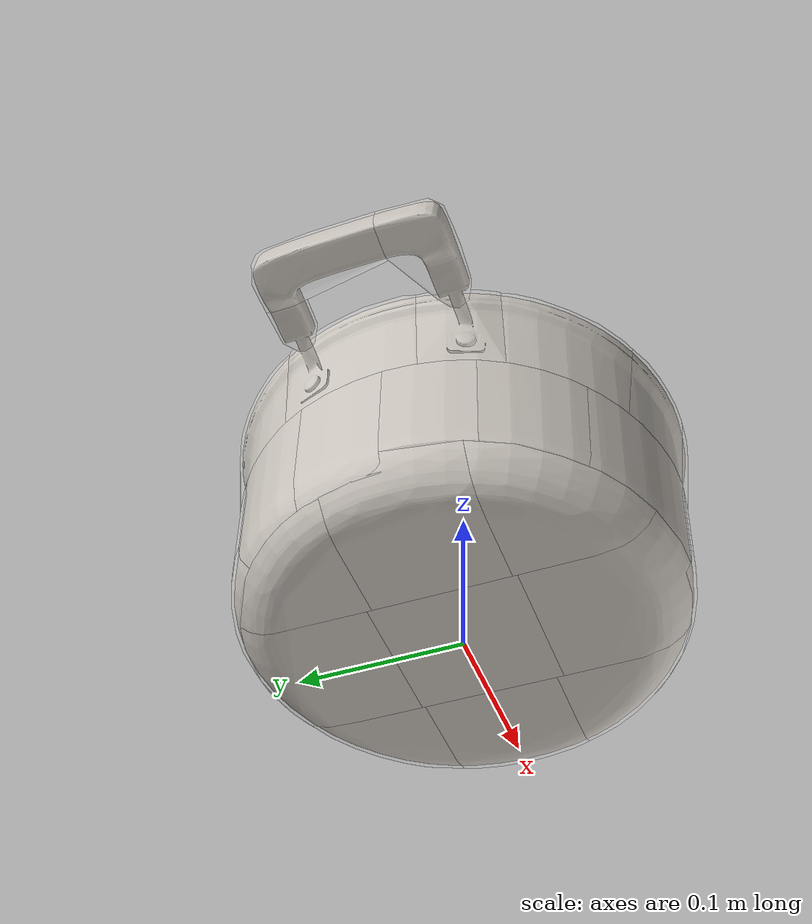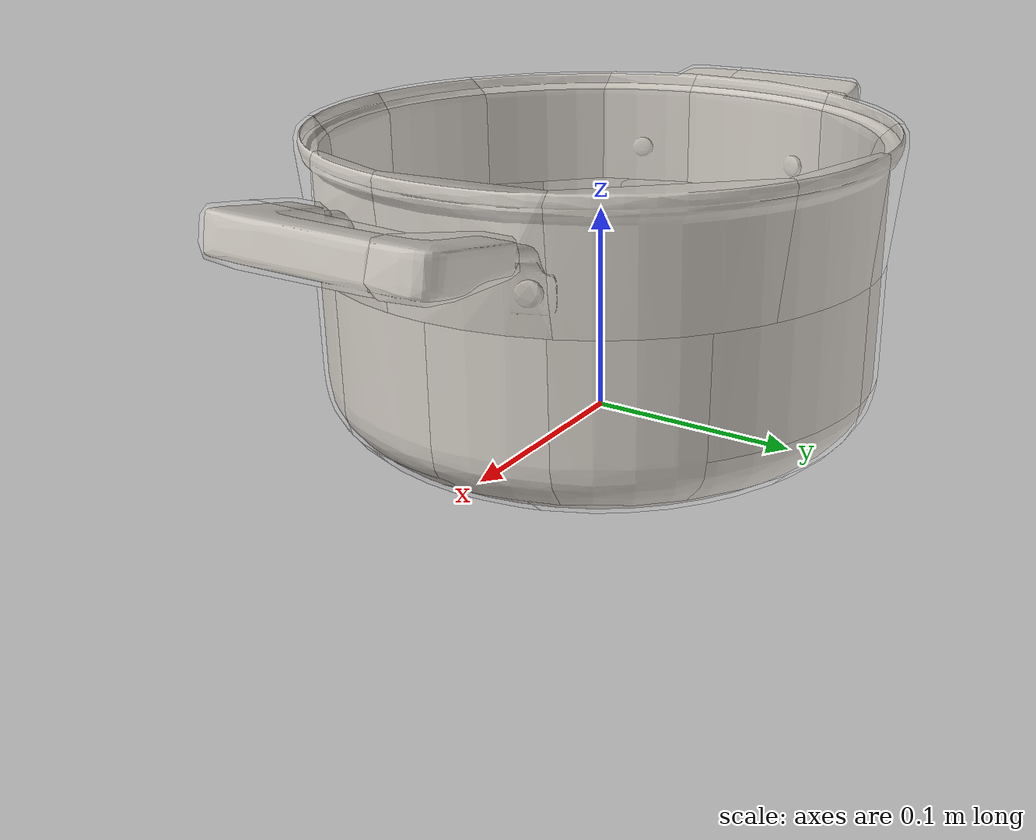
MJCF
<mujoco model="model">
  <compiler angle="radian"/>
  <asset>
    <mesh file="visual/Pot061.obj" name="Pot061_vis"/>
    <texture file="visual/T_Pot061_BC001.png" name="Pot061_material" type="2d"/>
    <material name="Pot061_material" rgba="1 1 1 1.0" texture="Pot061_material" shininess="0.4472135901451111" specular="0.3103448502657381"/>
    <mesh file="collision/Pot061_collision_8_0.obj" name="Pot061_collision_8_0"/>
    <mesh file="collision/Pot061_collision_9_0.obj" name="Pot061_collision_9_0"/>
    <mesh file="collision/Pot061_collision_23_0.obj" name="Pot061_collision_23_0"/>
    <mesh file="collision/Pot061_collision_22_0.obj" name="Pot061_collision_22_0"/>
    <mesh file="collision/Pot061_collision_20_0.obj" name="Pot061_collision_20_0"/>
    <mesh file="collision/Pot061_collision_21_0.obj" name="Pot061_collision_21_0"/>
    <mesh file="collision/Pot061_collision_19_0.obj" name="Pot061_collision_19_0"/>
    <mesh file="collision/Pot061_collision_25_0.obj" name="Pot061_collision_25_0"/>
    <mesh file="collision/Pot061_collision_24_0.obj" name="Pot061_collision_24_0"/>
    <mesh file="collision/Pot061_collision_18_0.obj" name="Pot061_collision_18_0"/>
    <mesh file="collision/Pot061_collision_26_0.obj" name="Pot061_collision_26_0"/>
    <mesh file="collision/Pot061_collision_27_0.obj" name="Pot061_collision_27_0"/>
    <mesh file="collision/Pot061_collision_16_0.obj" name="Pot061_collision_16_0"/>
    <mesh file="collision/Pot061_collision_17_0.obj" name="Pot061_collision_17_0"/>
    <mesh file="collision/Pot061_collision_15_0.obj" name="Pot061_collision_15_0"/>
    <mesh file="collision/Pot061_collision_29_0.obj" name="Pot061_collision_29_0"/>
    <mesh file="collision/Pot061_collision_28_0.obj" name="Pot061_collision_28_0"/>
    <mesh file="collision/Pot061_collision_28_1.obj" name="Pot061_collision_28_1"/>
    <mesh file="collision/Pot061_collision_14_0.obj" name="Pot061_collision_14_0"/>
    <mesh file="collision/Pot061_collision_14_1.obj" name="Pot061_collision_14_1"/>
    <mesh file="collision/Pot061_collision_10_0.obj" name="Pot061_collision_10_0"/>
    <mesh file="collision/Pot061_collision_11_0.obj" name="Pot061_collision_11_0"/>
    <mesh file="collision/Pot061_collision_13_0.obj" name="Pot061_collision_13_0"/>
    <mesh file="collision/Pot061_collision_12_0.obj" name="Pot061_collision_12_0"/>
    <mesh file="collision/Pot061_collision_7_0.obj" name="Pot061_collision_7_0"/>
    <mesh file="collision/Pot061_collision_6_0.obj" name="Pot061_collision_6_0"/>
    <mesh file="collision/Pot061_collision_4_0.obj" name="Pot061_collision_4_0"/>
    <mesh file="collision/Pot061_collision_5_0.obj" name="Pot061_collision_5_0"/>
    <mesh file="collision/Pot061_collision_1_0.obj" name="Pot061_collision_1_0"/>
    <mesh file="collision/Pot061_collision_1_1.obj" name="Pot061_collision_1_1"/>
    <mesh file="collision/Pot061_collision_0_0.obj" name="Pot061_collision_0_0"/>
    <mesh file="collision/Pot061_collision_0_1.obj" name="Pot061_collision_0_1"/>
    <mesh file="collision/Pot061_collision_0_2.obj" name="Pot061_collision_0_2"/>
    <mesh file="collision/Pot061_collision_0_3.obj" name="Pot061_collision_0_3"/>
    <mesh file="collision/Pot061_collision_0_4.obj" name="Pot061_collision_0_4"/>
    <mesh file="collision/Pot061_collision_0_5.obj" name="Pot061_collision_0_5"/>
    <mesh file="collision/Pot061_collision_0_6.obj" name="Pot061_collision_0_6"/>
    <mesh file="collision/Pot061_collision_0_7.obj" name="Pot061_collision_0_7"/>
    <mesh file="collision/Pot061_collision_0_8.obj" name="Pot061_collision_0_8"/>
    <mesh file="collision/Pot061_collision_2_0.obj" name="Pot061_collision_2_0"/>
    <mesh file="collision/Pot061_collision_3_0.obj" name="Pot061_collision_3_0"/>
  </asset>
  <default>
    <default class="visual">
      <geom conaffinity="0" contype="0" group="1" type="mesh" density="100"/>
    </default>
    <default class="collision">
      <geom group="0" type="mesh" density="100" solimp="0.95 0.98 0.001" solref="0.004 1" rgba="1 1 1 0.25"/>
    </default>
    <default class="spawn">
      <geom group="0" rgba="1 1 1 0.5" contype="0" conaffinity="0"/>
      <site group="0" rgba="1 1 1 0.5"/>
    </default>
    <default class="region">
      <geom group="1" conaffinity="0" contype="0" rgba="0 1 0 0"/>
    </default>
  </default>
  <worldbody>
    <body>
      <body name="object">
        <geom mesh="Pot061_vis" type="mesh" class="visual" material="Pot061_material"/>
        <geom class="collision" type="mesh" mesh="Pot061_collision_8_0"/>
        <geom class="collision" type="mesh" mesh="Pot061_collision_9_0"/>
        <geom class="collision" type="mesh" mesh="Pot061_collision_23_0"/>
        <geom class="collision" type="mesh" mesh="Pot061_collision_22_0"/>
        <geom class="collision" type="mesh" mesh="Pot061_collision_20_0"/>
        <geom class="collision" type="mesh" mesh="Pot061_collision_21_0"/>
        <geom class="collision" type="mesh" mesh="Pot061_collision_19_0"/>
        <geom class="collision" type="mesh" mesh="Pot061_collision_25_0"/>
        <geom class="collision" type="mesh" mesh="Pot061_collision_24_0"/>
        <geom class="collision" type="mesh" mesh="Pot061_collision_18_0"/>
        <geom class="collision" type="mesh" mesh="Pot061_collision_26_0"/>
        <geom class="collision" type="mesh" mesh="Pot061_collision_27_0"/>
        <geom class="collision" type="mesh" mesh="Pot061_collision_16_0"/>
        <geom class="collision" type="mesh" mesh="Pot061_collision_17_0"/>
        <geom class="collision" type="mesh" mesh="Pot061_collision_15_0"/>
        <geom class="collision" type="mesh" mesh="Pot061_collision_29_0"/>
        <geom class="collision" type="mesh" mesh="Pot061_collision_28_0"/>
        <geom class="collision" type="mesh" mesh="Pot061_collision_28_1"/>
        <geom class="collision" type="mesh" mesh="Pot061_collision_14_0"/>
        <geom class="collision" type="mesh" mesh="Pot061_collision_14_1"/>
        <geom class="collision" type="mesh" mesh="Pot061_collision_10_0"/>
        <geom class="collision" type="mesh" mesh="Pot061_collision_11_0"/>
        <geom class="collision" type="mesh" mesh="Pot061_collision_13_0"/>
        <geom class="collision" type="mesh" mesh="Pot061_collision_12_0"/>
        <geom class="collision" type="mesh" mesh="Pot061_collision_7_0"/>
        <geom class="collision" type="mesh" mesh="Pot061_collision_6_0"/>
        <geom class="collision" type="mesh" mesh="Pot061_collision_4_0"/>
        <geom class="collision" type="mesh" mesh="Pot061_collision_5_0"/>
        <geom class="collision" type="mesh" mesh="Pot061_collision_1_0"/>
        <geom class="collision" type="mesh" mesh="Pot061_collision_1_1"/>
        <geom class="collision" type="mesh" mesh="Pot061_collision_0_0"/>
        <geom class="collision" type="mesh" mesh="Pot061_collision_0_1"/>
        <geom class="collision" type="mesh" mesh="Pot061_collision_0_2"/>
        <geom class="collision" type="mesh" mesh="Pot061_collision_0_3"/>
        <geom class="collision" type="mesh" mesh="Pot061_collision_0_4"/>
        <geom class="collision" type="mesh" mesh="Pot061_collision_0_5"/>
        <geom class="collision" type="mesh" mesh="Pot061_collision_0_6"/>
        <geom class="collision" type="mesh" mesh="Pot061_collision_0_7"/>
        <geom class="collision" type="mesh" mesh="Pot061_collision_0_8"/>
        <geom class="collision" type="mesh" mesh="Pot061_collision_2_0"/>
        <geom class="collision" type="mesh" mesh="Pot061_collision_3_0"/>
        <geom class="region" name="reg_bbox" type="box" pos="-1.4500000000000624e-05 -1.000000000001e-06 0.07039035" size="0.1998515 0.13937 0.07254865"/>
        <geom class="region" name="liquid" type="cylinder" rgba="0 0 0 0" size="0.13 0.001" pos="0.000007 0.000001 0.10"/>
        <geom class="region" name="reg_int" type="cylinder" rgba="0 0 0 0" size="0.10 0.065" pos="0.000007 0.000001 0.07"/>
      </body>
    </body>
  </worldbody>
</mujoco>
